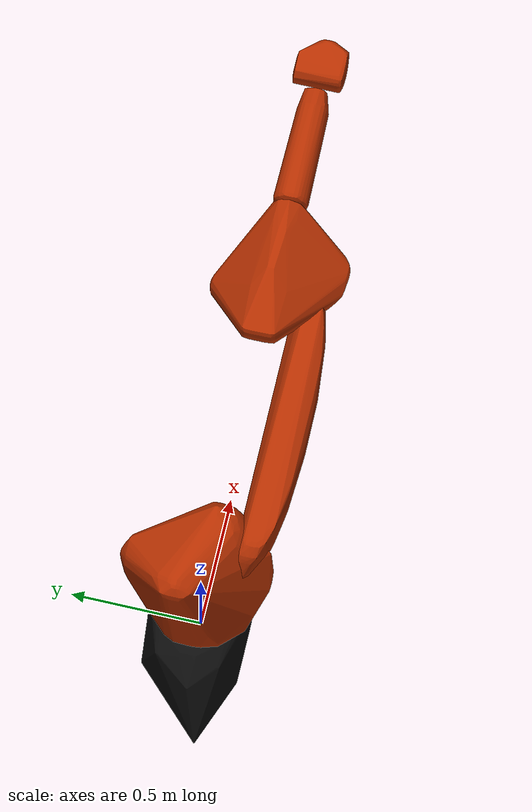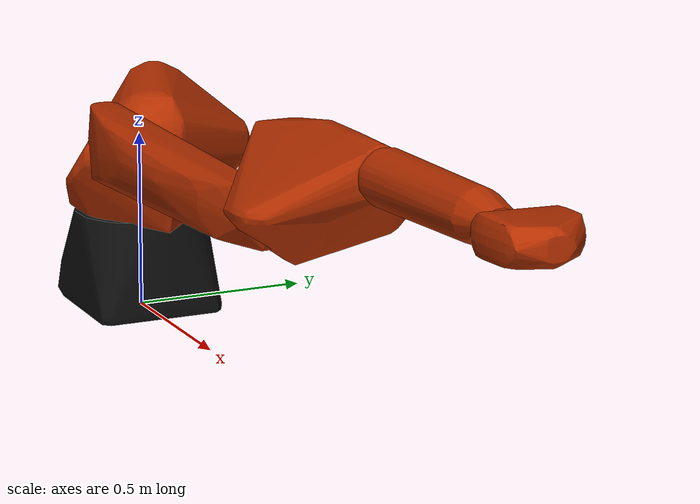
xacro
<?xml version="1.0"?>
<robot xmlns:xacro="http://www.ros.org/wiki/xacro" name="kr16_r2010_2">
  <!-- Import macro files  -->
  <xacro:include filename="$(find kuka_cybertech_support)/urdf/kr16_r2010_2_macro.xacro"/>
  <xacro:include filename="$(find kuka_cybertech_support)/urdf/kr_cybertech_ros2_control_macro.xacro"/>
  <!-- Read additional arguments  -->
  <xacro:arg name="driver_version" default="eki_rsi"/>
  <xacro:arg name="mode" default="hardware"/>
  <xacro:arg name="gpio_config_file" default=""/>
  <xacro:arg name="roundtrip_time" default="0"/>
  <xacro:arg name="client_ip" default="0.0.0.0"/>
  <xacro:arg name="client_port" default="59152"/>
  <xacro:arg name="controller_ip" default="0.0.0.0"/>
  <xacro:arg name="verify_robot_model" default="true"/>
  <xacro:arg name="prefix" default=""/>
  <xacro:arg name="x" default="0"/>
  <xacro:arg name="y" default="0"/>
  <xacro:arg name="z" default="0"/>
  <xacro:arg name="roll" default="0"/>
  <xacro:arg name="pitch" default="0"/>
  <xacro:arg name="yaw" default="0"/>
  <xacro:arg name="external_axis" default="false"/>
  <xacro:kuka_cybertech_ros2_control name="$(arg prefix)kr16_r2010_2" driver_version="$(arg driver_version)" client_ip="$(arg client_ip)" client_port="$(arg client_port)" controller_ip="$(arg controller_ip)" prefix="$(arg prefix)" mode="$(arg mode)" gpio_config_file="$(arg gpio_config_file)" roundtrip_time="$(arg roundtrip_time)" verify_robot_model="$(arg verify_robot_model)"/>
  <link name="world"/>
  <xacro:kuka_kr16_r2010_2_robot prefix="$(arg prefix)" package_name="kuka_cybertech_support" parent="world" external_axis="$(arg external_axis)">
    <origin xyz="$(arg x) $(arg y) $(arg z)" rpy="$(arg roll) $(arg pitch) $(arg yaw)"/>
  </xacro:kuka_kr16_r2010_2_robot>
</robot>

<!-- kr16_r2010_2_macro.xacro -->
<robot xmlns:xacro="http://wiki.ros.org/xacro">
  <xacro:macro name="kuka_kr16_r2010_2_robot" params="prefix package_name *origin parent external_axis:=false is_left:=false rail_mesh_package:='' rail_mesh_xyz:='0 0 0' rail_mesh_rpy:='3.141592 0 0' rail_carriage_mesh_xyz:='-0.490 0 0' rail_carriage_mesh_rpy:='0 0 0' carriage_plate_thickness:=0.159 rail_lower_limit:=-4.5 rail_upper_limit:=4.5">
    <xacro:property name="rail_mesh_pkg" value="${rail_mesh_package}"/>
    <xacro:if value="${rail_mesh_pkg == ''}">
      <xacro:property name="rail_mesh_pkg" value="${package_name}"/>
    </xacro:if>
    <!-- links - main serial chain -->
    <link name="${prefix}base_link">
      <collision>
        <geometry>
          <mesh filename="package://${package_name}/meshes/kr16_r2010_2/collision/base_link_convex.stl"/>
        </geometry>
        <origin rpy="-0.0 0.0 -0.0" xyz="0.0 0.0 0.0"/>
      </collision>
      <visual>
        <geometry>
          <mesh filename="package://${package_name}/meshes/kr16_r2010_2/visual/base_link.stl"/>
        </geometry>
        <origin rpy="-0.0 0.0 -0.0" xyz="0.0 0.0 0.0"/>
        <material name="black">
          <color rgba="0.05 0.05 0.05 1.0"/>
        </material>
      </visual>
    </link>

    <xacro:if value="${external_axis}">
      <!-- Rail mesh origin is the center of left-most mounting bracket of the rail -->
      <link name="${prefix}rail_base">
        <visual>
          <geometry>
            <mesh filename="package://${rail_mesh_pkg}/meshes/kr16_r2010_2/visual/rail_base.stl" scale="1 1 1"/>
          </geometry>
          <material name="rail_white">
            <color rgba="0.62 0.62 0.60 1.0"/>
          </material>
        </visual>
        <collision>
          <geometry>
            <mesh filename="package://${rail_mesh_pkg}/meshes/kr16_r2010_2/collision/rail_base_convex.stl" scale="1.0 1.1 1.0"/>
          </geometry>
        </collision>
      </link>

      <joint name="${prefix}parent-rail_base" type="fixed">
        <parent link="${parent}"/>
        <child link="${prefix}rail_base"/>
        <origin xyz="${rail_mesh_xyz}" rpy="${rail_mesh_rpy}"/>
      </joint>

      <!-- The hand measured zero position of the "Kuka mounting pin" relative to the left-most point of the rail -->
      <link name="${prefix}rail_zero"/>

      <joint name="${prefix}rail_base-rail_zero" type="fixed">
        <parent link="${parent}"/>
        <child link="${prefix}rail_zero"/>
        <xacro:insert_block name="origin"/>
      </joint>

      <!-- Inline with Kuka zero position -->
      <link name="${prefix}rail_to_carriage_mount"/>

      <joint name="${prefix}linear_rail" type="prismatic">
        <axis xyz="1 0 0"/>
        <parent link="${prefix}rail_zero"/>
        <child link="${prefix}rail_to_carriage_mount"/>
        <origin xyz="0 0 0" rpy="3.141592 0 0" />
        <limit acceleration="0.5" effort="100000.0" lower="${rail_lower_limit}" upper="${rail_upper_limit}" velocity="0.175"/>
      </joint>

      <link name="${prefix}rail_carriage_mesh">
        <visual>
          <geometry>
            <xacro:unless value="${is_left}">
            <mesh filename="package://${rail_mesh_pkg}/meshes/kr16_r2010_2/visual/rail_carriage.stl" scale="1 1 1"/>
            </xacro:unless>
            <xacro:if value="${is_left}">
            <mesh filename="package://${rail_mesh_pkg}/meshes/kr16_r2010_2/visual/rail_carriage_mirrored.stl" scale="1 1 1"/>
            </xacro:if>
          </geometry>
          <material name="black">
            <color rgba="0.05 0.05 0.05 1.0"/>
          </material>
        </visual>
        <collision>
          <geometry>
            <xacro:unless value="${is_left}">
            <mesh filename="package://${rail_mesh_pkg}/meshes/kr16_r2010_2/collision/rail_carriage_convex.stl" scale="1 1 1"/>
            </xacro:unless>
            <xacro:if value="${is_left}">
            <mesh filename="package://${rail_mesh_pkg}/meshes/kr16_r2010_2/collision/rail_carriage_convex_mirrored.stl" scale="1 1 1"/>
            </xacro:if>
          </geometry>
        </collision>
      </link>

      <!-- Origin of the carriage mesh is in an odd location -->
      <joint name="${prefix}rail_carriage_mesh-rail_carriage" type="fixed">
        <parent link="${prefix}rail_to_carriage_mount"/>
        <child link="${prefix}rail_carriage_mesh"/>
        <origin xyz="${rail_carriage_mesh_xyz}" rpy="${rail_carriage_mesh_rpy}"/>
      </joint>

      <joint name="${prefix}base_link" type="fixed">
        <parent link="${prefix}rail_to_carriage_mount"/>
        <child link="${prefix}base_link"/>
        <origin xyz="0 ${carriage_plate_thickness} 0" rpy="-1.5708 -1.5708 0"/>
      </joint>
    </xacro:if>

    <xacro:unless value="${external_axis}">
      <joint name="${prefix}parent-base_link" type="fixed">
        <parent link="${parent}"/>
        <child link="${prefix}base_link"/>
        <xacro:insert_block name="origin"/>
      </joint>
    </xacro:unless>

    <link name="${prefix}link_1">
      <collision>
        <geometry>
          <mesh filename="package://${package_name}/meshes/kr16_r2010_2/collision/link_1_convex.stl"/>
        </geometry>
        <origin rpy="-0.0 0.0 -0.0" xyz="0.0 0.0 0.0"/>
      </collision>
      <visual>
        <geometry>
          <mesh filename="package://${package_name}/meshes/kr16_r2010_2/visual/link_1.stl"/>
        </geometry>
        <origin rpy="-0.0 0.0 -0.0" xyz="0.0 0.0 0.0"/>
        <material name="orange">
          <color rgba="0.7 0.18 0.0 1.0"/>
        </material>
      </visual>
    </link>
    <link name="${prefix}link_2">
      <collision>
        <geometry>
          <mesh filename="package://${package_name}/meshes/kr16_r2010_2/collision/link_2_convex.stl"/>
        </geometry>
        <origin rpy="-0.0 0.0 -0.0" xyz="0.0 0.0 0.0"/>
      </collision>
      <visual>
        <geometry>
          <mesh filename="package://${package_name}/meshes/kr16_r2010_2/visual/link_2.stl"/>
        </geometry>
        <origin rpy="-0.0 0.0 -0.0" xyz="0.0 0.0 0.0"/>
        <material name="orange">
          <color rgba="0.7 0.18 0.0 1.0"/>
        </material>
      </visual>
    </link>
    <link name="${prefix}link_3">
      <collision>
        <geometry>
          <mesh filename="package://${package_name}/meshes/kr16_r2010_2/collision/link_3_convex.stl"/>
        </geometry>
        <origin rpy="-0.0 0.0 -0.0" xyz="0.0 0.0 0.0"/>
      </collision>
      <visual>
        <geometry>
          <mesh filename="package://${package_name}/meshes/kr16_r2010_2/visual/link_3.stl"/>
        </geometry>
        <origin rpy="-0.0 0.0 -0.0" xyz="0.0 0.0 0.0"/>
        <material name="orange">
          <color rgba="0.7 0.18 0.0 1.0"/>
        </material>
      </visual>
    </link>
    <link name="${prefix}link_4">
      <collision>
        <geometry>
          <mesh filename="package://${package_name}/meshes/kr16_r2010_2/collision/link_4_part_1_convex.stl"/>
        </geometry>
        <origin rpy="-0.0 0.0 -0.0" xyz="0.0 0.0 0.0"/>
      </collision>
      <visual>
        <geometry>
          <mesh filename="package://${package_name}/meshes/kr16_r2010_2/visual/link_4.stl"/>
        </geometry>
        <origin rpy="-0.0 0.0 -0.0" xyz="0.0 0.0 0.0"/>
        <material name="orange">
          <color rgba="0.7 0.18 0.0 1.0"/>
        </material>
      </visual>
    </link>
    <link name="${prefix}link_4_part_2">
      <collision>
        <geometry>
          <mesh filename="package://${package_name}/meshes/kr16_r2010_2/collision/link_4_convex.stl"/>
        </geometry>
        <origin rpy="-0.0 0.0 -0.0" xyz="0.0 0.0 0.0"/>
      </collision>
    </link>
    <link name="${prefix}link_5">
      <collision>
        <geometry>
          <mesh filename="package://${package_name}/meshes/kr16_r2010_2/collision/link_5_convex.stl"/>
        </geometry>
        <origin rpy="-0.0 0.0 -0.0" xyz="0.0 0.0 0.0"/>
      </collision>
      <visual>
        <geometry>
          <mesh filename="package://${package_name}/meshes/kr16_r2010_2/visual/link_5.stl"/>
        </geometry>
        <origin rpy="-0.0 0.0 -0.0" xyz="0.0 0.0 0.0"/>
        <material name="orange">
          <color rgba="0.7 0.18 0.0 1.0"/>
        </material>
      </visual>
    </link>
    <link name="${prefix}link_6">
      <collision>
        <geometry>
          <mesh filename="package://${package_name}/meshes/kr16_r2010_2/collision/link_6_convex.stl"/>
        </geometry>
        <origin rpy="-0.0 0.0 -0.0" xyz="0.0 0.0 0.0"/>
      </collision>
      <visual>
        <geometry>
          <mesh filename="package://${package_name}/meshes/kr16_r2010_2/visual/link_6.stl"/>
        </geometry>
        <origin rpy="-0.0 0.0 -0.0" xyz="0.0 0.0 0.0"/>
        <material name="orange">
          <color rgba="0.7 0.18 0.0 1.0"/>
        </material>
      </visual>
    </link>
    <joint name="${prefix}joint_1" type="revolute">
      <axis xyz="0.0 0.0 1.0"/>
      <child link="${prefix}link_1"/>
      <limit effort="1905.3" lower="-3.2288591162E0" upper="3.2288591161895095E0" velocity="${radians(200)}"/>
      <origin rpy="${-pi} 0.0 -0.0" xyz="0.0 0.0 0.0"/>
      <parent link="${prefix}base_link"/>
    </joint>
    <joint name="${prefix}joint_2" type="revolute">
      <axis xyz="0.0 0.0 1.0"/>
      <child link="${prefix}link_2"/>
      <limit effort="1633.6259859" lower="-3.2288591161895095E0" upper="1.1344640137963142E0" velocity="${radians(175)}"/>
      <origin rpy="${pi/2.0} 0.0 -0.0" xyz="0.16 0.0 -0.52"/>
      <parent link="${prefix}link_1"/>
    </joint>
    <joint name="${prefix}joint_3" type="revolute">
      <axis xyz="0.0 0.0 1.0"/>
      <child link="${prefix}link_3"/>
      <limit effort="850.58019869" lower="-2.4085543677521746E0" upper="3.0543261909900767E0" velocity="${radians(190)}"/>
      <origin rpy="0.0 0.0 ${-pi/2.0}" xyz="0.98 0.0 0.0"/>
      <parent link="${prefix}link_2"/>
    </joint>
    <joint name="${prefix}joint_4" type="revolute">
      <axis xyz="0.0 0.0 1.0"/>
      <child link="${prefix}link_4"/>
      <limit effort="266.21043332" lower="-6.1086523819801535E0" upper="6.1086523819801535E0" velocity="${radians(430)}"/>
      <origin rpy="${pi/2.0} 0.0 -0.0" xyz="0.15 0.0 0.0"/>
      <parent link="${prefix}link_3"/>
    </joint>
    <joint name="${prefix}joint_4_middle" type="fixed">
      <child link="${prefix}link_4_part_2"/>
      <origin rpy="0.0 0.0 -0.0" xyz="0.0 0.0 0.0"/>
      <parent link="${prefix}link_4"/>
    </joint>
    <joint name="${prefix}joint_5" type="revolute">
      <axis xyz="0.0 0.0 1.0"/>
      <child link="${prefix}link_5"/>
      <limit effort="255.43776663" lower="-2.268928027593E0" upper="2.2689280275926285E0" velocity="${radians(430)}"/>
      <origin rpy="${-pi/2.0} 0.0 -0.0" xyz="0.0 0.0 -0.86"/>
      <parent link="${prefix}link_4"/>
    </joint>
    <joint name="${prefix}joint_6" type="revolute">
      <axis xyz="0.0 0.0 1.0"/>
      <child link="${prefix}link_6"/>
      <limit effort="111.65796" lower="-6.1086523819801535E0" upper="6.1086523819801535E0" velocity="${radians(630)}"/>
      <origin rpy="${pi/2.0} 0.0 -0.0" xyz="0.0 0.0 0.0"/>
      <parent link="${prefix}link_5"/>
    </joint>
    <!-- ROS-Industrial 'base' frame - equivalent of 'KUKA ROBROOT'-->
    <link name="${prefix}base"/>
    <joint name="${prefix}base_link-base" type="fixed">
      <origin xyz="0 0 0" rpy="0 0 0"/>
      <parent link="${prefix}base_link"/>
      <child link="${prefix}base"/>
    </joint>
    <!-- ROS-Industrial 'flange' frame - attachment point for EEF models -->
    <link name="${prefix}flange"/>
    <joint name="${prefix}link6-flange" type="fixed">
      <child link="${prefix}flange"/>
      <origin rpy="0 ${pi/2} -0.0" xyz="0.0 0.0 -0.153"/>
      <parent link="${prefix}link_6"/>
    </joint>
    <!-- ROS-Industrial 'tool0' frame - all-zeros tool frame -->
    <link name="${prefix}tool0"/>
    <joint name="${prefix}link6-tool0" type="fixed">
      <child link="${prefix}tool0"/>
      <origin rpy="0 ${pi} -0.0" xyz="0.0 0.0 -0.153"/>
      <parent link="${prefix}link_6"/>
    </joint>
  </xacro:macro>
</robot>
